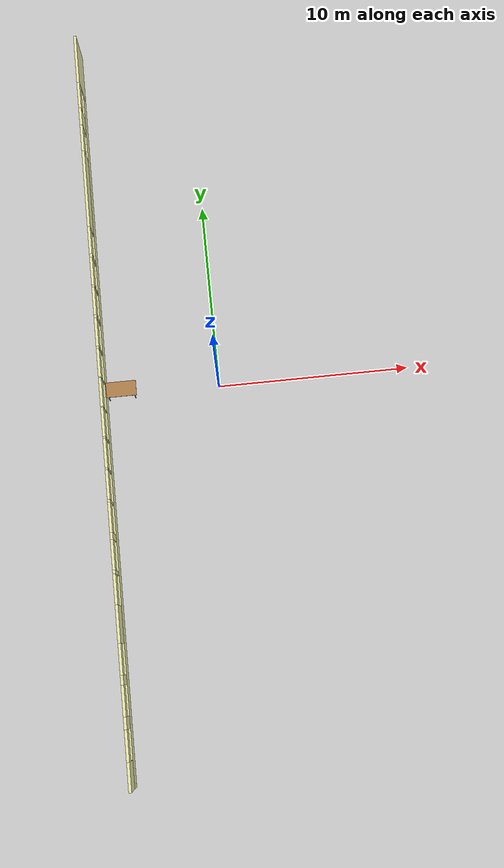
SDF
<sdf version="1.6">
 <world name="default">
  <model name="ground_plane">
   <static>1</static>
   <link name="link">
    <collision name="collision">
     <geometry><plane><normal>0 0 1</normal><size>100 100</size></plane></geometry>
     <surface><friction><ode><mu>100</mu><mu2>50</mu2></ode></friction></surface>
    </collision>
    <visual name="visual">
     <cast_shadows>0</cast_shadows>
     <geometry><plane><normal>0 0 1</normal><size>100 100</size></plane></geometry>
     <material>
      <script><uri>file://media/materials/scripts/gazebo.material</uri><name>Gazebo/Grey</name></script>
     </material>
    </visual>
   </link>
  </model>
  <model name="Building">
   <link name="Wall_51">
    <pose>-6 -0.013612 0 0 0 -1.5708</pose>
    <visual name="Wall_51_Visual_0">
     <pose>-18.3455 0 1.25 0 -0 0</pose>
     <geometry><box><size>2.75908 0.15 2.5</size></box></geometry>
     <material>
      <script><uri>file://media/materials/scripts/gazebo.material</uri><name>Gazebo/Grey</name></script>
      <ambient>0.92 0.92 0.68 1</ambient>
     </material>
     <meta><layer>0</layer></meta>
    </visual>
    <collision name="Wall_51_Collision_0">
     <geometry><box><size>2.75908 0.15 2.5</size></box></geometry>
     <pose>-18.3455 0 1.25 0 -0 0</pose>
    </collision>
    <visual name="Wall_51_Visual_1">
     <pose>1.37954 0 0.5 0 -0 0</pose>
     <geometry><box><size>36.6909 0.15 1</size></box></geometry>
     <material>
      <script><uri>file://media/materials/scripts/gazebo.material</uri><name>Gazebo/Grey</name></script>
      <ambient>0.92 0.92 0.68 1</ambient>
     </material>
     <meta><layer>0</layer></meta>
    </visual>
    <collision name="Wall_51_Collision_1">
     <geometry><box><size>36.6909 0.15 1</size></box></geometry>
     <pose>1.37954 0 0.5 0 -0 0</pose>
    </collision>
    <visual name="Wall_51_Visual_2">
     <pose>-14.9676 0 1.75 0 -0 0</pose>
     <geometry><box><size>0.996685 0.15 1.5</size></box></geometry>
     <material>
      <script><uri>file://media/materials/scripts/gazebo.material</uri><name>Gazebo/Grey</name></script>
      <ambient>0.92 0.92 0.68 1</ambient>
     </material>
     <meta><layer>0</layer></meta>
    </visual>
    <collision name="Wall_51_Collision_2">
     <geometry><box><size>0.996685 0.15 1.5</size></box></geometry>
     <pose>-14.9676 0 1.75 0 -0 0</pose>
    </collision>
    <visual name="Wall_51_Visual_3">
     <pose>-10.8228 0 1.75 0 -0 0</pose>
     <geometry><box><size>4.29294 0.15 1.5</size></box></geometry>
     <material>
      <script><uri>file://media/materials/scripts/gazebo.material</uri><name>Gazebo/Grey</name></script>
      <ambient>0.92 0.92 0.68 1</ambient>
     </material>
     <meta><layer>0</layer></meta>
    </visual>
    <collision name="Wall_51_Collision_3">
     <geometry><box><size>4.29294 0.15 1.5</size></box></geometry>
     <pose>-10.8228 0 1.75 0 -0 0</pose>
    </collision>
    <visual name="Wall_51_Visual_4">
     <pose>-7.07187 0 1.75 0 -0 0</pose>
     <geometry><box><size>0.208853 0.15 1.5</size></box></geometry>
     <material>
      <script><uri>file://media/materials/scripts/gazebo.material</uri><name>Gazebo/Grey</name></script>
      <ambient>0.92 0.92 0.68 1</ambient>
     </material>
     <meta><layer>0</layer></meta>
    </visual>
    <collision name="Wall_51_Collision_4">
     <geometry><box><size>0.208853 0.15 1.5</size></box></geometry>
     <pose>-7.07187 0 1.75 0 -0 0</pose>
    </collision>
    <visual name="Wall_51_Visual_5">
     <pose>-5.40799 0 1.75 0 -0 0</pose>
     <geometry><box><size>0.118914 0.15 1.5</size></box></geometry>
     <material>
      <script><uri>file://media/materials/scripts/gazebo.material</uri><name>Gazebo/Grey</name></script>
      <ambient>0.92 0.92 0.68 1</ambient>
     </material>
     <meta><layer>0</layer></meta>
    </visual>
    <collision name="Wall_51_Collision_5">
     <geometry><box><size>0.118914 0.15 1.5</size></box></geometry>
     <pose>-5.40799 0 1.75 0 -0 0</pose>
    </collision>
    <visual name="Wall_51_Visual_6">
     <pose>-3.7599 0 1.75 0 -0 0</pose>
     <geometry><box><size>0.177264 0.15 1.5</size></box></geometry>
     <material>
      <script><uri>file://media/materials/scripts/gazebo.material</uri><name>Gazebo/Grey</name></script>
      <ambient>0.92 0.92 0.68 1</ambient>
     </material>
     <meta><layer>0</layer></meta>
    </visual>
    <collision name="Wall_51_Collision_6">
     <geometry><box><size>0.177264 0.15 1.5</size></box></geometry>
     <pose>-3.7599 0 1.75 0 -0 0</pose>
    </collision>
    <visual name="Wall_51_Visual_7">
     <pose>-2.10352 0 1.75 0 -0 0</pose>
     <geometry><box><size>0.135496 0.15 1.5</size></box></geometry>
     <material>
      <script><uri>file://media/materials/scripts/gazebo.material</uri><name>Gazebo/Grey</name></script>
      <ambient>0.92 0.92 0.68 1</ambient>
     </material>
     <meta><layer>0</layer></meta>
    </visual>
    <collision name="Wall_51_Collision_7">
     <geometry><box><size>0.135496 0.15 1.5</size></box></geometry>
     <pose>-2.10352 0 1.75 0 -0 0</pose>
    </collision>
    <visual name="Wall_51_Visual_8">
     <pose>-0.512627 0 1.75 0 -0 0</pose>
     <geometry><box><size>0.046287 0.15 1.5</size></box></geometry>
     <material>
      <script><uri>file://media/materials/scripts/gazebo.material</uri><name>Gazebo/Grey</name></script>
      <ambient>0.92 0.92 0.68 1</ambient>
     </material>
     <meta><layer>0</layer></meta>
    </visual>
    <collision name="Wall_51_Collision_8">
     <geometry><box><size>0.046287 0.15 1.5</size></box></geometry>
     <pose>-0.512627 0 1.75 0 -0 0</pose>
    </collision>
    <visual name="Wall_51_Visual_9">
     <pose>1.03366 0 1.75 0 -0 0</pose>
     <geometry><box><size>0.046287 0.15 1.5</size></box></geometry>
     <material>
      <script><uri>file://media/materials/scripts/gazebo.material</uri><name>Gazebo/Grey</name></script>
      <ambient>0.92 0.92 0.68 1</ambient>
     </material>
     <meta><layer>0</layer></meta>
    </visual>
    <collision name="Wall_51_Collision_9">
     <geometry><box><size>0.046287 0.15 1.5</size></box></geometry>
     <pose>1.03366 0 1.75 0 -0 0</pose>
    </collision>
    <visual name="Wall_51_Visual_10">
     <pose>2.60968 0 1.75 0 -0 0</pose>
     <geometry><box><size>0.105759 0.15 1.5</size></box></geometry>
     <material>
      <script><uri>file://media/materials/scripts/gazebo.material</uri><name>Gazebo/Grey</name></script>
      <ambient>0.92 0.92 0.68 1</ambient>
     </material>
     <meta><layer>0</layer></meta>
    </visual>
    <collision name="Wall_51_Collision_10">
     <geometry><box><size>0.105759 0.15 1.5</size></box></geometry>
     <pose>2.60968 0 1.75 0 -0 0</pose>
    </collision>
    <visual name="Wall_51_Visual_11">
     <pose>4.21544 0 1.75 0 -0 0</pose>
     <geometry><box><size>0.105759 0.15 1.5</size></box></geometry>
     <material>
      <script><uri>file://media/materials/scripts/gazebo.material</uri><name>Gazebo/Grey</name></script>
      <ambient>0.92 0.92 0.68 1</ambient>
     </material>
     <meta><layer>0</layer></meta>
    </visual>
    <collision name="Wall_51_Collision_11">
     <geometry><box><size>0.105759 0.15 1.5</size></box></geometry>
     <pose>4.21544 0 1.75 0 -0 0</pose>
    </collision>
    <visual name="Wall_51_Visual_12">
     <pose>5.83607 0 1.75 0 -0 0</pose>
     <geometry><box><size>0.135496 0.15 1.5</size></box></geometry>
     <material>
      <script><uri>file://media/materials/scripts/gazebo.material</uri><name>Gazebo/Grey</name></script>
      <ambient>0.92 0.92 0.68 1</ambient>
     </material>
     <meta><layer>0</layer></meta>
    </visual>
    <collision name="Wall_51_Collision_12">
     <geometry><box><size>0.135496 0.15 1.5</size></box></geometry>
     <pose>5.83607 0 1.75 0 -0 0</pose>
    </collision>
    <visual name="Wall_51_Visual_13">
     <pose>7.58352 0 1.75 0 -0 0</pose>
     <geometry><box><size>0.359396 0.15 1.5</size></box></geometry>
     <material>
      <script><uri>file://media/materials/scripts/gazebo.material</uri><name>Gazebo/Grey</name></script>
      <ambient>0.92 0.92 0.68 1</ambient>
     </material>
     <meta><layer>0</layer></meta>
    </visual>
    <collision name="Wall_51_Collision_13">
     <geometry><box><size>0.359396 0.15 1.5</size></box></geometry>
     <pose>7.58352 0 1.75 0 -0 0</pose>
    </collision>
    <visual name="Wall_51_Visual_14">
     <pose>9.3585 0 1.75 0 -0 0</pose>
     <geometry><box><size>0.190582 0.15 1.5</size></box></geometry>
     <material>
      <script><uri>file://media/materials/scripts/gazebo.material</uri><name>Gazebo/Grey</name></script>
      <ambient>0.92 0.92 0.68 1</ambient>
     </material>
     <meta><layer>0</layer></meta>
    </visual>
    <collision name="Wall_51_Collision_14">
     <geometry><box><size>0.190582 0.15 1.5</size></box></geometry>
     <pose>9.3585 0 1.75 0 -0 0</pose>
    </collision>
    <visual name="Wall_51_Visual_15">
     <pose>11.8794 0 1.75 0 -0 0</pose>
     <geometry><box><size>1.85122 0.15 1.5</size></box></geometry>
     <material>
      <script><uri>file://media/materials/scripts/gazebo.material</uri><name>Gazebo/Grey</name></script>
      <ambient>0.92 0.92 0.68 1</ambient>
     </material>
     <meta><layer>0</layer></meta>
    </visual>
    <collision name="Wall_51_Collision_15">
     <geometry><box><size>1.85122 0.15 1.5</size></box></geometry>
     <pose>11.8794 0 1.75 0 -0 0</pose>
    </collision>
    <visual name="Wall_51_Visual_16">
     <pose>14.5363 0 1.75 0 -0 0</pose>
     <geometry><box><size>0.462595 0.15 1.5</size></box></geometry>
     <material>
      <script><uri>file://media/materials/scripts/gazebo.material</uri><name>Gazebo/Grey</name></script>
      <ambient>0.92 0.92 0.68 1</ambient>
     </material>
     <meta><layer>0</layer></meta>
    </visual>
    <collision name="Wall_51_Collision_16">
     <geometry><box><size>0.462595 0.15 1.5</size></box></geometry>
     <pose>14.5363 0 1.75 0 -0 0</pose>
    </collision>
    <visual name="Wall_51_Visual_17">
     <pose>16.5584 0 1.75 0 -0 0</pose>
     <geometry><box><size>0.58154 0.15 1.5</size></box></geometry>
     <material>
      <script><uri>file://media/materials/scripts/gazebo.material</uri><name>Gazebo/Grey</name></script>
      <ambient>0.92 0.92 0.68 1</ambient>
     </material>
     <meta><layer>0</layer></meta>
    </visual>
    <collision name="Wall_51_Collision_17">
     <geometry><box><size>0.58154 0.15 1.5</size></box></geometry>
     <pose>16.5584 0 1.75 0 -0 0</pose>
    </collision>
    <visual name="Wall_51_Visual_18">
     <pose>19.0371 0 1.75 0 -0 0</pose>
     <geometry><box><size>1.37585 0.15 1.5</size></box></geometry>
     <material>
      <script><uri>file://media/materials/scripts/gazebo.material</uri><name>Gazebo/Grey</name></script>
      <ambient>0.92 0.92 0.68 1</ambient>
     </material>
     <meta><layer>0</layer></meta>
    </visual>
    <collision name="Wall_51_Collision_18">
     <geometry><box><size>1.37585 0.15 1.5</size></box></geometry>
     <pose>19.0371 0 1.75 0 -0 0</pose>
    </collision>
    <visual name="Wall_51_Visual_19">
     <pose>-16.2159 0 2.15 0 -0 0</pose>
     <geometry><box><size>1.5 0.15 0.7</size></box></geometry>
     <material>
      <script><uri>file://media/materials/scripts/gazebo.material</uri><name>Gazebo/Grey</name></script>
      <ambient>0.92 0.92 0.68 1</ambient>
     </material>
     <meta><layer>0</layer></meta>
    </visual>
    <collision name="Wall_51_Collision_19">
     <geometry><box><size>1.5 0.15 0.7</size></box></geometry>
     <pose>-16.2159 0 2.15 0 -0 0</pose>
    </collision>
    <visual name="Wall_51_Visual_20">
     <pose>-13.7192 0 2.15 0 -0 0</pose>
     <geometry><box><size>1.5 0.15 0.7</size></box></geometry>
     <material>
      <script><uri>file://media/materials/scripts/gazebo.material</uri><name>Gazebo/Grey</name></script>
      <ambient>0.92 0.92 0.68 1</ambient>
     </material>
     <meta><layer>0</layer></meta>
    </visual>
    <collision name="Wall_51_Collision_20">
     <geometry><box><size>1.5 0.15 0.7</size></box></geometry>
     <pose>-13.7192 0 2.15 0 -0 0</pose>
    </collision>
    <visual name="Wall_51_Visual_21">
     <pose>-7.9263 0 2.15 0 -0 0</pose>
     <geometry><box><size>1.5 0.15 0.7</size></box></geometry>
     <material>
      <script><uri>file://media/materials/scripts/gazebo.material</uri><name>Gazebo/Grey</name></script>
      <ambient>0.92 0.92 0.68 1</ambient>
     </material>
     <meta><layer>0</layer></meta>
    </visual>
    <collision name="Wall_51_Collision_21">
     <geometry><box><size>1.5 0.15 0.7</size></box></geometry>
     <pose>-7.9263 0 2.15 0 -0 0</pose>
    </collision>
    <visual name="Wall_51_Visual_22">
     <pose>-6.21744 0 2.15 0 -0 0</pose>
     <geometry><box><size>1.5 0.15 0.7</size></box></geometry>
     <material>
      <script><uri>file://media/materials/scripts/gazebo.material</uri><name>Gazebo/Grey</name></script>
      <ambient>0.92 0.92 0.68 1</ambient>
     </material>
     <meta><layer>0</layer></meta>
    </visual>
    <collision name="Wall_51_Collision_22">
     <geometry><box><size>1.5 0.15 0.7</size></box></geometry>
     <pose>-6.21744 0 2.15 0 -0 0</pose>
    </collision>
    <visual name="Wall_51_Visual_23">
     <pose>-4.59853 0 2.15 0 -0 0</pose>
     <geometry><box><size>1.5 0.15 0.7</size></box></geometry>
     <material>
      <script><uri>file://media/materials/scripts/gazebo.material</uri><name>Gazebo/Grey</name></script>
      <ambient>0.92 0.92 0.68 1</ambient>
     </material>
     <meta><layer>0</layer></meta>
    </visual>
    <collision name="Wall_51_Collision_23">
     <geometry><box><size>1.5 0.15 0.7</size></box></geometry>
     <pose>-4.59853 0 2.15 0 -0 0</pose>
    </collision>
    <visual name="Wall_51_Visual_24">
     <pose>-2.92127 0 2.15 0 -0 0</pose>
     <geometry><box><size>1.5 0.15 0.7</size></box></geometry>
     <material>
      <script><uri>file://media/materials/scripts/gazebo.material</uri><name>Gazebo/Grey</name></script>
      <ambient>0.92 0.92 0.68 1</ambient>
     </material>
     <meta><layer>0</layer></meta>
    </visual>
    <collision name="Wall_51_Collision_24">
     <geometry><box><size>1.5 0.15 0.7</size></box></geometry>
     <pose>-2.92127 0 2.15 0 -0 0</pose>
    </collision>
    <visual name="Wall_51_Visual_25">
     <pose>-1.28577 0 2.15 0 -0 0</pose>
     <geometry><box><size>1.5 0.15 0.7</size></box></geometry>
     <material>
      <script><uri>file://media/materials/scripts/gazebo.material</uri><name>Gazebo/Grey</name></script>
      <ambient>0.92 0.92 0.68 1</ambient>
     </material>
     <meta><layer>0</layer></meta>
    </visual>
    <collision name="Wall_51_Collision_25">
     <geometry><box><size>1.5 0.15 0.7</size></box></geometry>
     <pose>-1.28577 0 2.15 0 -0 0</pose>
    </collision>
    <visual name="Wall_51_Visual_26">
     <pose>0.260517 0 2.15 0 -0 0</pose>
     <geometry><box><size>1.5 0.15 0.7</size></box></geometry>
     <material>
      <script><uri>file://media/materials/scripts/gazebo.material</uri><name>Gazebo/Grey</name></script>
      <ambient>0.92 0.92 0.68 1</ambient>
     </material>
     <meta><layer>0</layer></meta>
    </visual>
    <collision name="Wall_51_Collision_26">
     <geometry><box><size>1.5 0.15 0.7</size></box></geometry>
     <pose>0.260517 0 2.15 0 -0 0</pose>
    </collision>
    <visual name="Wall_51_Visual_27">
     <pose>1.8068 0 2.15 0 -0 0</pose>
     <geometry><box><size>1.5 0.15 0.7</size></box></geometry>
     <material>
      <script><uri>file://media/materials/scripts/gazebo.material</uri><name>Gazebo/Grey</name></script>
      <ambient>0.92 0.92 0.68 1</ambient>
     </material>
     <meta><layer>0</layer></meta>
    </visual>
    <collision name="Wall_51_Collision_27">
     <geometry><box><size>1.5 0.15 0.7</size></box></geometry>
     <pose>1.8068 0 2.15 0 -0 0</pose>
    </collision>
    <visual name="Wall_51_Visual_28">
     <pose>3.41256 0 2.15 0 -0 0</pose>
     <geometry><box><size>1.5 0.15 0.7</size></box></geometry>
     <material>
      <script><uri>file://media/materials/scripts/gazebo.material</uri><name>Gazebo/Grey</name></script>
      <ambient>0.92 0.92 0.68 1</ambient>
     </material>
     <meta><layer>0</layer></meta>
    </visual>
    <collision name="Wall_51_Collision_28">
     <geometry><box><size>1.5 0.15 0.7</size></box></geometry>
     <pose>3.41256 0 2.15 0 -0 0</pose>
    </collision>
    <visual name="Wall_51_Visual_29">
     <pose>5.01832 0 2.15 0 -0 0</pose>
     <geometry><box><size>1.5 0.15 0.7</size></box></geometry>
     <material>
      <script><uri>file://media/materials/scripts/gazebo.material</uri><name>Gazebo/Grey</name></script>
      <ambient>0.92 0.92 0.68 1</ambient>
     </material>
     <meta><layer>0</layer></meta>
    </visual>
    <collision name="Wall_51_Collision_29">
     <geometry><box><size>1.5 0.15 0.7</size></box></geometry>
     <pose>5.01832 0 2.15 0 -0 0</pose>
    </collision>
    <visual name="Wall_51_Visual_30">
     <pose>6.65382 0 2.15 0 -0 0</pose>
     <geometry><box><size>1.5 0.15 0.7</size></box></geometry>
     <material>
      <script><uri>file://media/materials/scripts/gazebo.material</uri><name>Gazebo/Grey</name></script>
      <ambient>0.92 0.92 0.68 1</ambient>
     </material>
     <meta><layer>0</layer></meta>
    </visual>
    <collision name="Wall_51_Collision_30">
     <geometry><box><size>1.5 0.15 0.7</size></box></geometry>
     <pose>6.65382 0 2.15 0 -0 0</pose>
    </collision>
    <visual name="Wall_51_Visual_31">
     <pose>8.51321 0 2.15 0 -0 0</pose>
     <geometry><box><size>1.5 0.15 0.7</size></box></geometry>
     <material>
      <script><uri>file://media/materials/scripts/gazebo.material</uri><name>Gazebo/Grey</name></script>
      <ambient>0.92 0.92 0.68 1</ambient>
     </material>
     <meta><layer>0</layer></meta>
    </visual>
    <collision name="Wall_51_Collision_31">
     <geometry><box><size>1.5 0.15 0.7</size></box></geometry>
     <pose>8.51321 0 2.15 0 -0 0</pose>
    </collision>
    <visual name="Wall_51_Visual_32">
     <pose>10.2038 0 2.15 0 -0 0</pose>
     <geometry><box><size>1.5 0.15 0.7</size></box></geometry>
     <material>
      <script><uri>file://media/materials/scripts/gazebo.material</uri><name>Gazebo/Grey</name></script>
      <ambient>0.92 0.92 0.68 1</ambient>
     </material>
     <meta><layer>0</layer></meta>
    </visual>
    <collision name="Wall_51_Collision_32">
     <geometry><box><size>1.5 0.15 0.7</size></box></geometry>
     <pose>10.2038 0 2.15 0 -0 0</pose>
    </collision>
    <visual name="Wall_51_Visual_33">
     <pose>13.555 0 2.15 0 -0 0</pose>
     <geometry><box><size>1.5 0.15 0.7</size></box></geometry>
     <material>
      <script><uri>file://media/materials/scripts/gazebo.material</uri><name>Gazebo/Grey</name></script>
      <ambient>0.92 0.92 0.68 1</ambient>
     </material>
     <meta><layer>0</layer></meta>
    </visual>
    <collision name="Wall_51_Collision_33">
     <geometry><box><size>1.5 0.15 0.7</size></box></geometry>
     <pose>13.555 0 2.15 0 -0 0</pose>
    </collision>
    <visual name="Wall_51_Visual_34">
     <pose>15.5176 0 2.15 0 -0 0</pose>
     <geometry><box><size>1.5 0.15 0.7</size></box></geometry>
     <material>
      <script><uri>file://media/materials/scripts/gazebo.material</uri><name>Gazebo/Grey</name></script>
      <ambient>0.92 0.92 0.68 1</ambient>
     </material>
     <meta><layer>0</layer></meta>
    </visual>
    <collision name="Wall_51_Collision_34">
     <geometry><box><size>1.5 0.15 0.7</size></box></geometry>
     <pose>15.5176 0 2.15 0 -0 0</pose>
    </collision>
    <visual name="Wall_51_Visual_35">
     <pose>17.5992 0 2.15 0 -0 0</pose>
     <geometry><box><size>1.5 0.15 0.7</size></box></geometry>
     <material>
      <script><uri>file://media/materials/scripts/gazebo.material</uri><name>Gazebo/Grey</name></script>
      <ambient>0.92 0.92 0.68 1</ambient>
     </material>
     <meta><layer>0</layer></meta>
    </visual>
    <collision name="Wall_51_Collision_35">
     <geometry><box><size>1.5 0.15 0.7</size></box></geometry>
     <pose>17.5992 0 2.15 0 -0 0</pose>
    </collision>
   </link>
   <static>1</static>
  </model>
  <model name="tablealt_0_clone_21">
   <link name="link">
    <inertial>
     <mass>1</mass>
     <inertia><ixx>1</ixx><ixy>0</ixy><ixz>0</ixz><iyy>1</iyy><iyz>0</iyz><izz>1</izz></inertia>
    </inertial>
    <visual name="back_right_leg">
     <pose>-0.68 -0.38 0.4 0 -0 0</pose>
     <geometry><cylinder><radius>0.02</radius><length>0.8</length></cylinder></geometry>
     <material>
      <script><uri>file://media/materials/scripts/gazebo.material</uri><name>Gazebo/Grey</name></script>
      <shader type="pixel"><normal_map>__default__</normal_map></shader>
      <ambient>0.3 0.3 0.3 1</ambient>
      <diffuse>0.7 0.7 0.7 1</diffuse>
      <specular>0.01 0.01 0.01 1</specular>
      <emissive>0 0 0 1</emissive>
     </material>
    </visual>
    <visual name="back_left_leg">
     <pose>-0.68 0.38 0.4 0 -0 0</pose>
     <geometry><cylinder><radius>0.02</radius><length>0.8</length></cylinder></geometry>
     <material>
      <script><uri>file://media/materials/scripts/gazebo.material</uri><name>Gazebo/Grey</name></script>
      <shader type="pixel"><normal_map>__default__</normal_map></shader>
      <ambient>0.3 0.3 0.3 1</ambient>
      <diffuse>0.7 0.7 0.7 1</diffuse>
      <specular>0.01 0.01 0.01 1</specular>
      <emissive>0 0 0 1</emissive>
     </material>
    </visual>
    <visual name="visual1">
     <pose>0 0 0.8 0 -0 0</pose>
     <geometry><box><size>1.57 0.8 0.03</size></box></geometry>
     <material>
      <script><uri>file://media/materials/scripts/gazebo.material</uri><name>Gazebo/Wood</name></script>
      <shader type="pixel"><normal_map>__default__</normal_map></shader>
      <ambient>0.92 0.92 0.68 1</ambient>
      <diffuse>1 1 1 1</diffuse>
      <specular>0.2 0.2 0.2 1</specular>
      <emissive>0 0 0 1</emissive>
     </material>
    </visual>
    <visual name="front_left_leg">
     <pose>0.68 0.38 0.4 0 -0 0</pose>
     <geometry><cylinder><radius>0.02</radius><length>0.8</length></cylinder></geometry>
     <material>
      <script><uri>file://media/materials/scripts/gazebo.material</uri><name>Gazebo/Grey</name></script>
      <shader type="pixel"><normal_map>__default__</normal_map></shader>
      <ambient>0.3 0.3 0.3 1</ambient>
      <diffuse>0.7 0.7 0.7 1</diffuse>
      <specular>0.01 0.01 0.01 1</specular>
      <emissive>0 0 0 1</emissive>
     </material>
    </visual>
    <visual name="front_right_leg">
     <pose>0.68 -0.38 0.4 0 -0 0</pose>
     <geometry><cylinder><radius>0.02</radius><length>0.8</length></cylinder></geometry>
     <material>
      <script><uri>file://media/materials/scripts/gazebo.material</uri><name>Gazebo/Grey</name></script>
      <shader type="pixel"><normal_map>__default__</normal_map></shader>
      <ambient>0.3 0.3 0.3 1</ambient>
      <diffuse>0.7 0.7 0.7 1</diffuse>
      <specular>0.01 0.01 0.01 1</specular>
      <emissive>0 0 0 1</emissive>
     </material>
    </visual>
    <collision name="front_right_leg">
     <pose>0.68 -0.38 0.4 0 -0 0</pose>
     <geometry><cylinder><radius>0.02</radius><length>0.8</length></cylinder></geometry>
     <surface>
      <friction>
       <ode><mu>1</mu><mu2>1</mu2><fdir1>0 0 0</fdir1><slip1>0</slip1><slip2>0</slip2></ode>
       <torsional>
        <coefficient>1</coefficient>
        <patch_radius>0</patch_radius>
        <surface_radius>0</surface_radius>
        <use_patch_radius>1</use_patch_radius>
        <ode><slip>0</slip></ode>
       </torsional>
      </friction>
      <bounce><restitution_coefficient>0</restitution_coefficient><threshold>1e+06</threshold></bounce>
      <contact>
       <collide_without_contact>0</collide_without_contact>
       <collide_without_contact_bitmask>1</collide_without_contact_bitmask>
       <collide_bitmask>1</collide_bitmask>
       <ode>
        <soft_cfm>0</soft_cfm>
        <soft_erp>0.2</soft_erp>
        <kp>1e+13</kp>
        <kd>1</kd>
        <max_vel>0.01</max_vel>
        <min_depth>0</min_depth>
       </ode>
       <bullet>
        <split_impulse>1</split_impulse>
        <split_impulse_penetration_threshold>-0.01</split_impulse_penetration_threshold>
        <soft_cfm>0</soft_cfm>
        <soft_erp>0.2</soft_erp>
        <kp>1e+13</kp>
        <kd>1</kd>
       </bullet>
      </contact>
     </surface>
    </collision>
    <collision name="surface">
     <pose>0 0 0.8 0 -0 0</pose>
     <geometry><box><size>1.5 0.8 0.03</size></box></geometry>
     <surface>
      <friction>
       <ode><mu>0.6</mu><mu2>0.6</mu2><fdir1>0 0 0</fdir1><slip1>0</slip1><slip2>0</slip2></ode>
       <torsional>
        <coefficient>1</coefficient>
        <patch_radius>0</patch_radius>
        <surface_radius>0</surface_radius>
        <use_patch_radius>1</use_patch_radius>
        <ode><slip>0</slip></ode>
       </torsional>
      </friction>
      <bounce><restitution_coefficient>0</restitution_coefficient><threshold>1e+06</threshold></bounce>
      <contact>
       <collide_without_contact>0</collide_without_contact>
       <collide_without_contact_bitmask>1</collide_without_contact_bitmask>
       <collide_bitmask>1</collide_bitmask>
       <ode>
        <soft_cfm>0</soft_cfm>
        <soft_erp>0.2</soft_erp>
        <kp>1e+13</kp>
        <kd>1</kd>
        <max_vel>0.01</max_vel>
        <min_depth>0</min_depth>
       </ode>
       <bullet>
        <split_impulse>1</split_impulse>
        <split_impulse_penetration_threshold>-0.01</split_impulse_penetration_threshold>
        <soft_cfm>0</soft_cfm>
        <soft_erp>0.2</soft_erp>
        <kp>1e+13</kp>
        <kd>1</kd>
       </bullet>
      </contact>
     </surface>
    </collision>
    <collision name="front_left_leg">
     <pose>0.68 0.38 0.4 0 -0 0</pose>
     <geometry><cylinder><radius>0.02</radius><length>0.8</length></cylinder></geometry>
     <surface>
      <friction>
       <ode><mu>1</mu><mu2>1</mu2><fdir1>0 0 0</fdir1><slip1>0</slip1><slip2>0</slip2></ode>
       <torsional>
        <coefficient>1</coefficient>
        <patch_radius>0</patch_radius>
        <surface_radius>0</surface_radius>
        <use_patch_radius>1</use_patch_radius>
        <ode><slip>0</slip></ode>
       </torsional>
      </friction>
      <bounce><restitution_coefficient>0</restitution_coefficient><threshold>1e+06</threshold></bounce>
      <contact>
       <collide_without_contact>0</collide_without_contact>
       <collide_without_contact_bitmask>1</collide_without_contact_bitmask>
       <collide_bitmask>1</collide_bitmask>
       <ode>
        <soft_cfm>0</soft_cfm>
        <soft_erp>0.2</soft_erp>
        <kp>1e+13</kp>
        <kd>1</kd>
        <max_vel>0.01</max_vel>
        <min_depth>0</min_depth>
       </ode>
       <bullet>
        <split_impulse>1</split_impulse>
        <split_impulse_penetration_threshold>-0.01</split_impulse_penetration_threshold>
        <soft_cfm>0</soft_cfm>
        <soft_erp>0.2</soft_erp>
        <kp>1e+13</kp>
        <kd>1</kd>
       </bullet>
      </contact>
     </surface>
    </collision>
    <collision name="back_left_leg">
     <pose>-0.68 0.38 0.4 0 -0 0</pose>
     <geometry><cylinder><radius>0.02</radius><length>0.8</length></cylinder></geometry>
     <surface>
      <friction>
       <ode><mu>1</mu><mu2>1</mu2><fdir1>0 0 0</fdir1><slip1>0</slip1><slip2>0</slip2></ode>
       <torsional>
        <coefficient>1</coefficient>
        <patch_radius>0</patch_radius>
        <surface_radius>0</surface_radius>
        <use_patch_radius>1</use_patch_radius>
        <ode><slip>0</slip></ode>
       </torsional>
      </friction>
      <bounce><restitution_coefficient>0</restitution_coefficient><threshold>1e+06</threshold></bounce>
      <contact>
       <collide_without_contact>0</collide_without_contact>
       <collide_without_contact_bitmask>1</collide_without_contact_bitmask>
       <collide_bitmask>1</collide_bitmask>
       <ode>
        <soft_cfm>0</soft_cfm>
        <soft_erp>0.2</soft_erp>
        <kp>1e+13</kp>
        <kd>1</kd>
        <max_vel>0.01</max_vel>
        <min_depth>0</min_depth>
       </ode>
       <bullet>
        <split_impulse>1</split_impulse>
        <split_impulse_penetration_threshold>-0.01</split_impulse_penetration_threshold>
        <soft_cfm>0</soft_cfm>
        <soft_erp>0.2</soft_erp>
        <kp>1e+13</kp>
        <kd>1</kd>
       </bullet>
      </contact>
     </surface>
    </collision>
    <collision name="back_right_leg">
     <pose>-0.68 -0.38 0.4 0 -0 0</pose>
     <geometry><cylinder><radius>0.02</radius><length>0.8</length></cylinder></geometry>
     <surface>
      <friction>
       <ode><mu>1</mu><mu2>1</mu2><fdir1>0 0 0</fdir1><slip1>0</slip1><slip2>0</slip2></ode>
       <torsional>
        <coefficient>1</coefficient>
        <patch_radius>0</patch_radius>
        <surface_radius>0</surface_radius>
        <use_patch_radius>1</use_patch_radius>
        <ode><slip>0</slip></ode>
       </torsional>
      </friction>
      <bounce><restitution_coefficient>0</restitution_coefficient><threshold>1e+06</threshold></bounce>
      <contact>
       <collide_without_contact>0</collide_without_contact>
       <collide_without_contact_bitmask>1</collide_without_contact_bitmask>
       <collide_bitmask>1</collide_bitmask>
       <ode>
        <soft_cfm>0</soft_cfm>
        <soft_erp>0.2</soft_erp>
        <kp>1e+13</kp>
        <kd>1</kd>
        <max_vel>0.01</max_vel>
        <min_depth>0</min_depth>
       </ode>
       <bullet>
        <split_impulse>1</split_impulse>
        <split_impulse_penetration_threshold>-0.01</split_impulse_penetration_threshold>
        <soft_cfm>0</soft_cfm>
        <soft_erp>0.2</soft_erp>
        <kp>1e+13</kp>
        <kd>1</kd>
       </bullet>
      </contact>
     </surface>
    </collision>
   </link>
   <static>1</static>
   <pose>-5.12 0.19 0 0 -0 0</pose>
  </model>
 </world>
</sdf>
